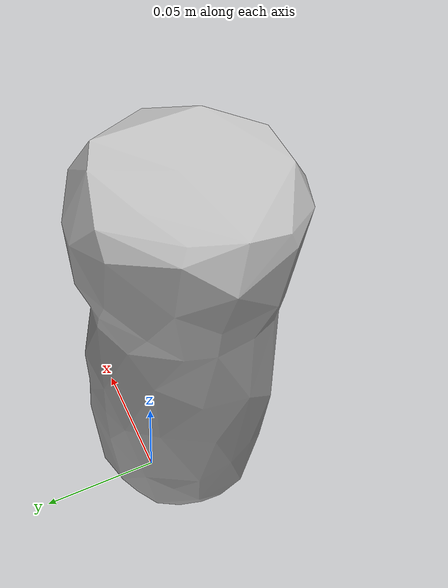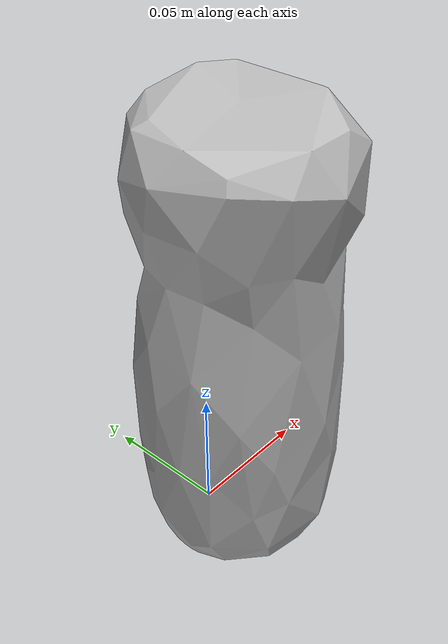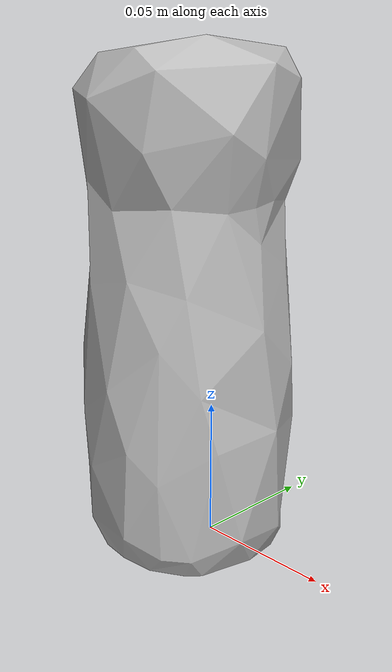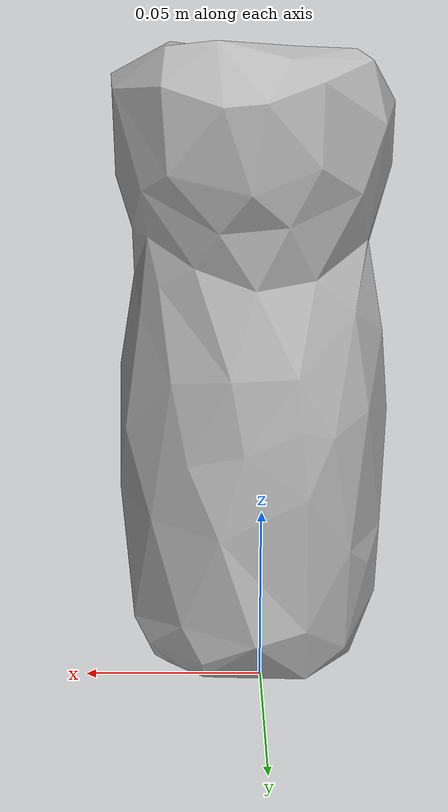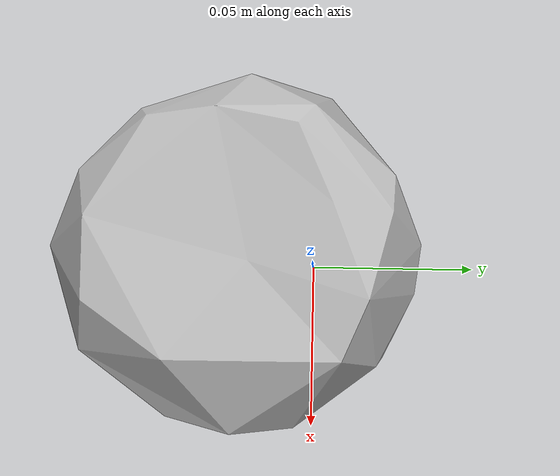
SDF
<?xml version='1.0'?>
<sdf version="1.4">
  <model name="coffee_mate_french_vanilla">
    <static>false</static>
    <link name="link">
      <inertial>
        <pose>0.003199550897865939 -0.013318575953717488 0.08847454223985202 -0.0003025371953008999 -0.0234940803575239 2.4501246891567585</pose>
        <mass>0.07576892907130998</mass>
        <inertia>
          <ixx>0.00020254150034520785</ixx>
          <ixy>-7.798153280111111e-21</ixy>
          <ixz>5.476214178905305e-20</ixz>
          <iyy>0.0002021379036536888</iyy>
          <iyz>-4.9391808699163945e-20</iyz>
          <izz>5.426332640239932e-05</izz>
        </inertia>
      </inertial>
      <collision name="collision">
        <geometry>
          <mesh>
            <!-- Use a downsampled mesh for collisions -->
            <uri>model:///coffee_mate_french_vanilla/coffee_mate_french_vanilla_250_collision.obj</uri>
	        </mesh>
        </geometry>
        <surface>
      </surface>
      </collision>
      <visual name="visual">
        <geometry>
          <mesh>
            <uri>model:///coffee_mate_french_vanilla/optimized_tsdf_texture_mapped_mesh.obj</uri>
	        </mesh>
        </geometry>
        <material>
          <script>
            <uri>model:///coffee_mate_french_vanilla/coffee_mate_french_vanilla.material</uri>
            <name>coffee_mate_french_vanilla</name>
          </script>
        </material>
      </visual>
    </link>
  </model>
</sdf>
